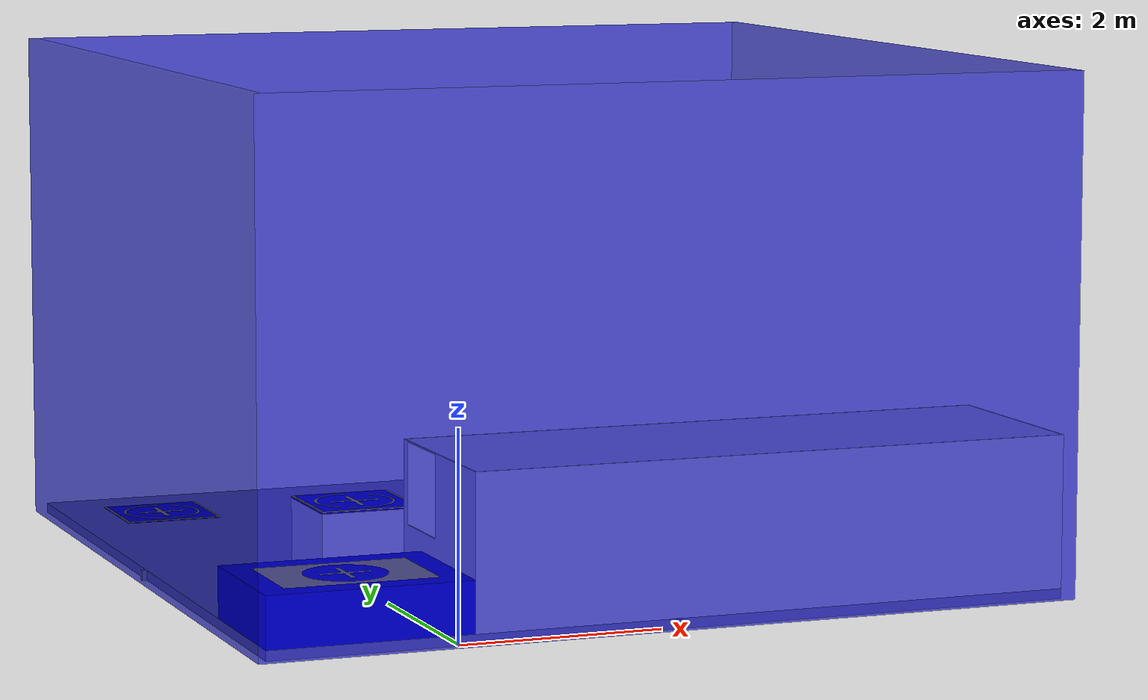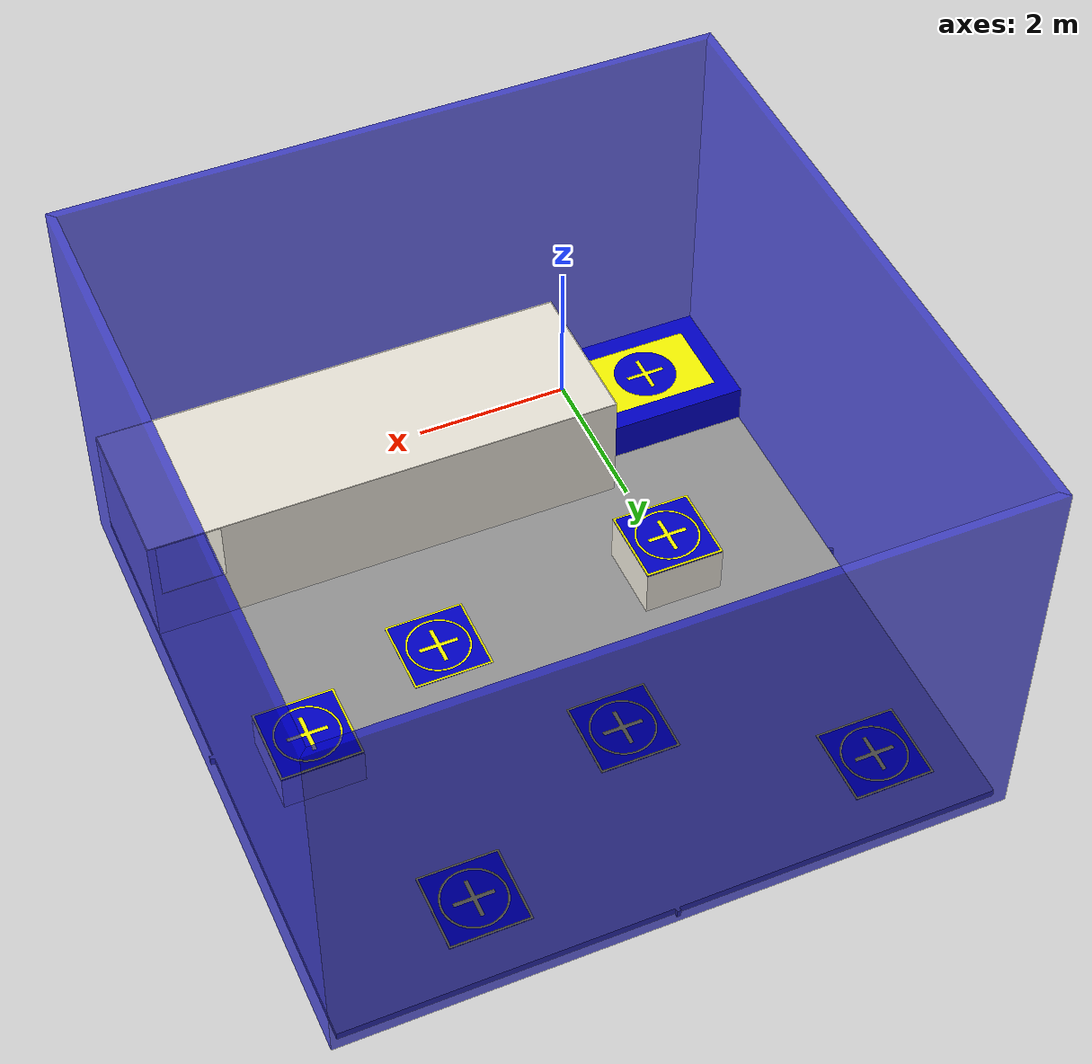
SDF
<sdf version='1.11'>
  <model name='arena_2025_desenho_5'>
    <link name='base_link'>
      <inertial>
        <pose>2.007137063814882 3.7095277436307299 1.6816011139771989 0 0 0</pose>
        <mass>205335.98191315381</mass>
        <inertia>
          <ixx>2398590.1758396029</ixx>
          <ixy>-105314.3252685613</ixy>
          <ixz>-41107.762993912911</ixz>
          <iyy>2421938.134123703</iyy>
          <iyz>-59231.310826300411</iyz>
          <izz>3714783.946488</izz>
        </inertia>
      </inertial>
      <collision name='base_link_collision_collision'>
        <pose>0 0 0 0 0 0</pose>
        <geometry>
          <mesh>
            <scale>0.001 0.001 0.001</scale>
            <uri>meshes/base_link.stl</uri>
          </mesh>
        </geometry>
      </collision>
      <collision name='base_link_fixed_joint_lump__parede1_collision_collision_1'>
        <pose>-1.8502115568123969 -0.041793670335398492 -6.9388939039072284e-18 0 0 0</pose>
        <geometry>
          <mesh>
            <scale>0.001 0.001 0.001</scale>
            <uri>meshes/parede1.stl</uri>
          </mesh>
        </geometry>
      </collision>
      <collision name='base_link_fixed_joint_lump__parede4_collision_collision_2'>
        <pose>-1.850211556812396 -0.041793670335398048 -9.4368957093138306e-16 0 0 0</pose>
        <geometry>
          <mesh>
            <scale>0.001 0.001 0.001</scale>
            <uri>meshes/parede4.stl</uri>
          </mesh>
        </geometry>
      </collision>
      <collision name='base_link_fixed_joint_lump__parede3_collision_collision_3'>
        <pose>-1.8502115568123969 -0.041793670335399817 8.3266726846886741e-16 1.224646799147353e-16 -7.4987989133092894e-33 1.224646799147353e-16</pose>
        <geometry>
          <mesh>
            <scale>0.001 0.001 0.001</scale>
            <uri>meshes/parede3.stl</uri>
          </mesh>
        </geometry>
      </collision>
      <collision name='base_link_fixed_joint_lump__parede2_collision_collision_4'>
        <pose>-1.850211556812396 -0.041793670335398478 -6.9388939039072284e-18 0 0 0</pose>
        <geometry>
          <mesh>
            <scale>0.001 0.001 0.001</scale>
            <uri>meshes/parede2.stl</uri>
          </mesh>
        </geometry>
      </collision>
      <collision name='base_link_fixed_joint_lump__Takeoff_Baseazul_collision_collision_5'>
        <pose>-1.8502115568123969 -0.041793670335398492 5.6898930012039273e-16 0 0 0</pose>
        <geometry>
          <mesh>
            <scale>0.001 0.001 0.001</scale>
            <uri>meshes/Takeoff_Baseazul.stl</uri>
          </mesh>
        </geometry>
      </collision>
      <collision name='base_link_fixed_joint_lump__Takeoff_Baseamarelo_collision_collision_6'>
        <pose>-1.8502115568123969 -0.041793670335398492 5.134781488891349e-16 0 0 0</pose>
        <geometry>
          <mesh>
            <scale>0.001 0.001 0.001</scale>
            <uri>meshes/Takeoff_Baseamarelo.stl</uri>
          </mesh>
        </geometry>
      </collision>
      <collision name='base_link_fixed_joint_lump__casa_paredes_collision_collision_7'>
        <pose>-1.850211556812398 -0.041793670335398492 0 0 0 0</pose>
        <geometry>
          <mesh>
            <scale>0.001 0.001 0.001</scale>
            <uri>meshes/casa_paredes.stl</uri>
          </mesh>
        </geometry>
      </collision>
      <collision name='base_link_fixed_joint_lump__casa_teto_collision_collision_8'>
        <pose>-1.8502115568123949 -0.041793670335397833 2.775557561562891e-17 0 0 0</pose>
        <geometry>
          <mesh>
            <scale>0.001 0.001 0.001</scale>
            <uri>meshes/casa_teto.stl</uri>
          </mesh>
        </geometry>
      </collision>
      <collision name='base_link_fixed_joint_lump__base_movelzinza1_collision_collision_9'>
        <pose>-0.85021148681640069 0.45820632934572147 -2.0010000000149009 0 0 0</pose>
        <geometry>
          <mesh>
            <scale>0.001 0.001 0.001</scale>
            <uri>meshes/base_movelzinza1.stl</uri>
          </mesh>
        </geometry>
      </collision>
      <collision name='base_link_fixed_joint_lump__Landing_Basesazul1_collision_collision_10'>
        <pose>-0.8502114868163978 0.4582063293457268 -0.1000000000000003 0 0 0</pose>
        <geometry>
          <mesh>
            <scale>0.001 0.001 0.001</scale>
            <uri>meshes/Landing_Basesazul1.stl</uri>
          </mesh>
        </geometry>
      </collision>
      <collision name='base_link_fixed_joint_lump__Landing_Basesamarelo_1_collision_collision_11'>
        <pose>-0.8502114868163938 0.45820632934573841 -0.1000000000000003 0 0 0</pose>
        <geometry>
          <mesh>
            <scale>0.001 0.001 0.001</scale>
            <uri>meshes/Landing_Basesamarelo_1.stl</uri>
          </mesh>
        </geometry>
      </collision>
      <collision name='base_link_fixed_joint_lump__Landing_Basesazul3_collision_collision_12'>
        <pose>1.6497885131835941 -2.5417936706542972 -8.0000000000149001 0 0 0</pose>
        <geometry>
          <mesh>
            <scale>0.001 0.001 0.001</scale>
            <uri>meshes/Landing_Basesazul3.stl</uri>
          </mesh>
        </geometry>
      </collision>
      <collision name='base_link_fixed_joint_lump__Landing_Basesamarelo_3_collision_collision_13'>
        <pose>1.6497885131835941 -2.5417936706542972 -1.4900372602433271e-11 0 0 0</pose>
        <geometry>
          <mesh>
            <scale>0.001 0.001 0.001</scale>
            <uri>meshes/Landing_Basesamarelo_3.stl</uri>
          </mesh>
        </geometry>
      </collision>
      <collision name='base_link_fixed_joint_lump__Landing_Basesazul4_collision_collision_14'>
        <pose>-2.3502114868164061 0.95820632934570327 -6.500000000014901 0 0 0</pose>
        <geometry>
          <mesh>
            <scale>0.001 0.001 0.001</scale>
            <uri>meshes/Landing_Basesazul4.stl</uri>
          </mesh>
        </geometry>
      </collision>
      <collision name='base_link_fixed_joint_lump__Landing_Basesamarelo_4_collision_collision_15'>
        <pose>-2.3502114868164061 0.95820632934570327 -1.4900372602433271e-11 0 0 0</pose>
        <geometry>
          <mesh>
            <scale>0.001 0.001 0.001</scale>
            <uri>meshes/Landing_Basesamarelo_4.stl</uri>
          </mesh>
        </geometry>
      </collision>
      <collision name='base_link_fixed_joint_lump__Landing_Basesazul5_collision_collision_16'>
        <pose>-2.850211486816387 3.9582063293457121 -5.500000000014901 0 0 0</pose>
        <geometry>
          <mesh>
            <scale>0.001 0.001 0.001</scale>
            <uri>meshes/Landing_Basesazul5.stl</uri>
          </mesh>
        </geometry>
      </collision>
      <collision name='base_link_fixed_joint_lump__Landing_Basesamarelo_5_collision_collision_17'>
        <pose>-2.850211486816407 3.9582063293457042 -4.5000000000149001 0 0 0</pose>
        <geometry>
          <mesh>
            <scale>0.001 0.001 0.001</scale>
            <uri>meshes/Landing_Basesamarelo_5.stl</uri>
          </mesh>
        </geometry>
      </collision>
      <collision name='base_link_fixed_joint_lump__Landing_Basesazul6_collision_collision_18'>
        <pose>-5.8502114868164066 5.8702063293457032 -4.000000000014901 0 0 0</pose>
        <geometry>
          <mesh>
            <scale>0.001 0.001 0.001</scale>
            <uri>meshes/Landing_Basesazul6.stl</uri>
          </mesh>
        </geometry>
      </collision>
      <collision name='base_link_fixed_joint_lump__Landing_Basesamarelo_6_collision_collision_19'>
        <pose>-5.8502114868164066 5.8702063293457032 -1.5010000000149011 0 0 0</pose>
        <geometry>
          <mesh>
            <scale>0.001 0.001 0.001</scale>
            <uri>meshes/Landing_Basesamarelo_6.stl</uri>
          </mesh>
        </geometry>
      </collision>
      <collision name='base_link_fixed_joint_lump__base_movelzinza2_collision_collision_20'>
        <pose>0.64978851318359432 -2.0417936706542972 -4.9910000000149006 0 0 0</pose>
        <geometry>
          <mesh>
            <scale>0.001 0.001 0.001</scale>
            <uri>meshes/base_movelzinza2.stl</uri>
          </mesh>
        </geometry>
      </collision>
      <collision name='base_link_fixed_joint_lump__Landing_Basesazul2_collision_collision_21'>
        <pose>0.64978851318360142 -2.0417936706542861 -0.49100001610815541 0 0 0</pose>
        <geometry>
          <mesh>
            <scale>0.001 0.001 0.001</scale>
            <uri>meshes/Landing_Basesazul2.stl</uri>
          </mesh>
        </geometry>
      </collision>
      <collision name='base_link_fixed_joint_lump__Landing_Basesamarelo_2_collision_collision_22'>
        <pose>0.64978851318360498 -2.0417936706542812 -0.49100001610815508 0 0 0</pose>
        <geometry>
          <mesh>
            <scale>0.001 0.001 0.001</scale>
            <uri>meshes/Landing_Basesamarelo_2.stl</uri>
          </mesh>
        </geometry>
      </collision>

      #visuals cores

      <visual name='base_link_visual_visual'>
        <pose>0 0 0 0 0 0</pose>
        <geometry>
          <mesh>
            <scale>0.001 0.001 0.001</scale>
            <uri>meshes/base_link.stl</uri>
          </mesh>
        </geometry>
        <material>
          <ambient>0.4 0.4 0.4 1</ambient>
          <diffuse>0.6 0.6 0.6 1</diffuse>
          <specular>0.8 0.8 0.8 1</specular>
        </material>
      </visual>
      <visual name='base_link_fixed_joint_lump__parede1_visual_visual_1'>
        <pose>-1.8502115568123969 -0.041793670335398492 -6.9388939039072284e-18 0 0 0</pose>
        <geometry>
          <mesh>
            <scale>0.001 0.001 0.001</scale>
            <uri>meshes/parede1.stl</uri>
          </mesh>
        </geometry>
        <material>
          <ambient>0.0 0.0 0.5 0.65</ambient>
          <diffuse>0.0 0.0 0.8 0.65</diffuse>
          <specular>0.3 0.3 0.8 0.65</specular>
          <transparency>0.65</transparency>
        </material>
      </visual>
      <visual name='base_link_fixed_joint_lump__parede4_visual_visual_2'>
        <pose>-1.850211556812396 -0.041793670335398048 -9.4368957093138306e-16 0 0 0</pose>
        <geometry>
          <mesh>
            <scale>0.001 0.001 0.001</scale>
            <uri>meshes/parede4.stl</uri>
          </mesh>
        </geometry>
        <material>
          <ambient>0.0 0.0 0.5 0.65</ambient>
          <diffuse>0.0 0.0 0.8 0.65</diffuse>
          <specular>0.3 0.3 0.8 0.65</specular>
          <transparency>0.65</transparency>
        </material>
      </visual>
      <visual name='base_link_fixed_joint_lump__parede3_visual_visual_3'>
        <pose>-1.8502115568123969 -0.041793670335399817 8.3266726846886741e-16 1.224646799147353e-16 -7.4987989133092894e-33 1.224646799147353e-16</pose>
        <geometry>
          <mesh>
            <scale>0.001 0.001 0.001</scale>
            <uri>meshes/parede3.stl</uri>
          </mesh>
        </geometry>
        <material>
          <ambient>0.0 0.0 0.5 0.65</ambient>
          <diffuse>0.0 0.0 0.8 0.65</diffuse>
          <specular>0.3 0.3 0.8 0.65</specular>
          <transparency>0.65</transparency>
        </material>
      </visual>
      <visual name='base_link_fixed_joint_lump__parede2_visual_visual_4'>
        <pose>-1.850211556812396 -0.041793670335398478 -6.9388939039072284e-18 0 0 0</pose>
        <geometry>
          <mesh>
            <scale>0.001 0.001 0.001</scale>
            <uri>meshes/parede2.stl</uri>
          </mesh>
        </geometry>
        <material>
          <ambient>0.0 0.0 0.5 0.65</ambient>
          <diffuse>0.0 0.0 0.8 0.65</diffuse>
          <specular>0.3 0.3 0.8 0.65</specular>
          <transparency>0.65</transparency>
        </material>
      </visual>
      <visual name='base_link_fixed_joint_lump__Takeoff_Baseazul_visual_visual_5'>
        <pose>-1.8502115568123969 -0.041793670335398492 5.6898930012039273e-16 0 0 0</pose>
        <geometry>
          <mesh>
            <scale>0.001 0.001 0.001</scale>
            <uri>meshes/Takeoff_Baseazul.stl</uri>
          </mesh>
        </geometry>
        <material>
          <ambient>0.0 0.0 0.5 1</ambient>
          <diffuse>0.0 0.0 0.8 1</diffuse>
          <specular>0.3 0.3 0.8 1</specular>
        </material>
      </visual>
      <visual name='base_link_fixed_joint_lump__Takeoff_Baseamarelo_visual_visual_6'>
        <pose>-1.8502115568123969 -0.041793670335398492 5.134781488891349e-16 0 0 0</pose>
        <geometry>
          <mesh>
            <scale>0.001 0.001 0.001</scale>
            <uri>meshes/Takeoff_Baseamarelo.stl</uri>
          </mesh>
        </geometry>
        <material>
          <ambient>0.8 0.8 0.0 1</ambient>
          <diffuse>1.0 1.0 0.0 1</diffuse>
           <specular>0.8 0.8 0.3 1</specular>
        </material>
      </visual>
      <visual name='base_link_fixed_joint_lump__casa_paredes_visual_visual_7'>
        <pose>-1.850211556812398 -0.041793670335398492 0 0 0 0</pose>
        <geometry>
          <mesh>
            <scale>0.001 0.001 0.001</scale>
            <uri>meshes/casa_paredes.stl</uri>
          </mesh>
        </geometry>
        <material>
          <ambient>0.92 0.90 0.85 1</ambient>
          <diffuse>0.94 0.92 0.87 1</diffuse>
          <specular>0.14 0.14 0.13 1</specular>
        </material>
      </visual>
      <visual name='base_link_fixed_joint_lump__casa_teto_visual_visual_8'>
        <pose>-1.8502115568123949 -0.041793670335397833 2.775557561562891e-17 0 0 0</pose>
        <geometry>
          <mesh>
            <scale>0.001 0.001 0.001</scale>
            <uri>meshes/casa_teto.stl</uri>
          </mesh>
        </geometry>
        <material>
          <ambient>0.92 0.90 0.85 1</ambient>
          <diffuse>0.94 0.92 0.87 1</diffuse>
          <specular>0.14 0.14 0.13 1</specular>
        </material>
      </visual>
      <visual name='base_link_fixed_joint_lump__base_movelzinza1_visual_visual_9'>
        <pose>-0.85021148681640069 0.45820632934572147 -2.0010000000149009 0 0 0</pose>
        <geometry>
          <mesh>
            <scale>0.001 0.001 0.001</scale>
            <uri>meshes/base_movelzinza1.stl</uri>
          </mesh>
        </geometry>
        <material>
          <ambient>0.92 0.90 0.85 1</ambient>
          <diffuse>0.94 0.92 0.87 1</diffuse>
          <specular>0.14 0.14 0.13 1</specular>
        </material>
      </visual>
      <visual name='base_link_fixed_joint_lump__Landing_Basesazul1_visual_visual_10'>
        <pose>-0.8502114868163978 0.4582063293457268 -0.1000000000000003 0 0 0</pose>
        <geometry>
          <mesh>
            <scale>0.001 0.001 0.001</scale>
            <uri>meshes/Landing_Basesazul1.stl</uri>
          </mesh>
        </geometry>
        <material>
          <ambient>0.0 0.0 0.5 1</ambient>
          <diffuse>0.0 0.0 0.8 1</diffuse>
          <specular>0.3 0.3 0.8 1</specular>
        </material>
      </visual>
      <visual name='base_link_fixed_joint_lump__Landing_Basesamarelo_1_visual_visual_11'>
        <pose>-0.8502114868163938 0.45820632934573841 -0.1000000000000003 0 0 0</pose>
        <geometry>
          <mesh>
            <scale>0.001 0.001 0.001</scale>
            <uri>meshes/Landing_Basesamarelo_1.stl</uri>
          </mesh>
        </geometry>
        <material>
          <ambient>0.8 0.8 0.0 1</ambient>
          <diffuse>1.0 1.0 0.0 1</diffuse>
           <specular>0.8 0.8 0.3 1</specular>
        </material>
      </visual>
      <visual name='base_link_fixed_joint_lump__Landing_Basesazul3_visual_visual_12'>
        <pose>1.6497885131835941 -2.5417936706542972 -8.0000000000149001 0 0 0</pose>
        <geometry>
          <mesh>
            <scale>0.001 0.001 0.001</scale>
            <uri>meshes/Landing_Basesazul3.stl</uri>
          </mesh>
        </geometry>
        <material>
          <ambient>0.0 0.0 0.5 1</ambient>
          <diffuse>0.0 0.0 0.8 1</diffuse>
          <specular>0.3 0.3 0.8 1</specular>
        </material>
      </visual>
      <visual name='base_link_fixed_joint_lump__Landing_Basesamarelo_3_visual_visual_13'>
        <pose>1.6497885131835941 -2.5417936706542972 -1.4900372602433271e-11 0 0 0</pose>
        <geometry>
          <mesh>
            <scale>0.001 0.001 0.001</scale>
            <uri>meshes/Landing_Basesamarelo_3.stl</uri>
          </mesh>
        </geometry>
        <material>
          <ambient>0.8 0.8 0.0 1</ambient>
          <diffuse>1.0 1.0 0.0 1</diffuse>
           <specular>0.8 0.8 0.3 1</specular>
        </material>
      </visual>
      <visual name='base_link_fixed_joint_lump__Landing_Basesazul4_visual_visual_14'>
        <pose>-2.3502114868164061 0.95820632934570327 -6.500000000014901 0 0 0</pose>
        <geometry>
          <mesh>
            <scale>0.001 0.001 0.001</scale>
            <uri>meshes/Landing_Basesazul4.stl</uri>
          </mesh>
        </geometry>
        <material>
          <ambient>0.0 0.0 0.5 1</ambient>
          <diffuse>0.0 0.0 0.8 1</diffuse>
          <specular>0.3 0.3 0.8 1</specular>
        </material>
      </visual>
      <visual name='base_link_fixed_joint_lump__Landing_Basesamarelo_4_visual_visual_15'>
        <pose>-2.3502114868164061 0.95820632934570327 -1.4900372602433271e-11 0 0 0</pose>
        <geometry>
          <mesh>
            <scale>0.001 0.001 0.001</scale>
            <uri>meshes/Landing_Basesamarelo_4.stl</uri>
          </mesh>
        </geometry>
        <material>
          <ambient>0.8 0.8 0.0 1</ambient>
          <diffuse>1.0 1.0 0.0 1</diffuse>
           <specular>0.8 0.8 0.3 1</specular>
        </material>
      </visual>
      <visual name='base_link_fixed_joint_lump__Landing_Basesazul5_visual_visual_16'>
        <pose>-2.850211486816387 3.9582063293457121 -5.500000000014901 0 0 0</pose>
        <geometry>
          <mesh>
            <scale>0.001 0.001 0.001</scale>
            <uri>meshes/Landing_Basesazul5.stl</uri>
          </mesh>
        </geometry>
        <material>
          <ambient>0.0 0.0 0.5 1</ambient>
          <diffuse>0.0 0.0 0.8 1</diffuse>
          <specular>0.3 0.3 0.8 1</specular>
        </material>
      </visual>
      <visual name='base_link_fixed_joint_lump__Landing_Basesamarelo_5_visual_visual_17'>
        <pose>-2.850211486816407 3.9582063293457042 -4.5000000000149001 0 0 0</pose>
        <geometry>
          <mesh>
            <scale>0.001 0.001 0.001</scale>
            <uri>meshes/Landing_Basesamarelo_5.stl</uri>
          </mesh>
        </geometry>
        <material>
          <ambient>0.8 0.8 0.0 1</ambient>
          <diffuse>1.0 1.0 0.0 1</diffuse>
           <specular>0.8 0.8 0.3 1</specular>
        </material>
      </visual>
      <visual name='base_link_fixed_joint_lump__Landing_Basesazul6_visual_visual_18'>
        <pose>-5.8502114868164066 5.8702063293457032 -4.000000000014901 0 0 0</pose>
        <geometry>
          <mesh>
            <scale>0.001 0.001 0.001</scale>
            <uri>meshes/Landing_Basesazul6.stl</uri>
          </mesh>
        </geometry>
        <material>
          <ambient>0.0 0.0 0.5 1</ambient>
          <diffuse>0.0 0.0 0.8 1</diffuse>
          <specular>0.3 0.3 0.8 1</specular>
        </material>
      </visual>
      <visual name='base_link_fixed_joint_lump__Landing_Basesamarelo_6_visual_visual_19'>
        <pose>-5.8502114868164066 5.8702063293457032 -1.5010000000149011 0 0 0</pose>
        <geometry>
          <mesh>
            <scale>0.001 0.001 0.001</scale>
            <uri>meshes/Landing_Basesamarelo_6.stl</uri>
          </mesh>
        </geometry>
        <material>
          <ambient>0.8 0.8 0.0 1</ambient>
          <diffuse>1.0 1.0 0.0 1</diffuse>
           <specular>0.8 0.8 0.3 1</specular>
        </material>
      </visual>
      <visual name='base_link_fixed_joint_lump__base_movelzinza2_visual_visual_20'>
        <pose>0.64978851318359432 -2.0417936706542972 -4.9910000000149006 0 0 0</pose>
        <geometry>
          <mesh>
            <scale>0.001 0.001 0.001</scale>
            <uri>meshes/base_movelzinza2.stl</uri>
          </mesh>
        </geometry>
        <material>
          <ambient>0.92 0.90 0.85 1</ambient>
          <diffuse>0.94 0.92 0.87 1</diffuse>
          <specular>0.14 0.14 0.13 1</specular>
        </material>
      </visual>
      <visual name='base_link_fixed_joint_lump__Landing_Basesazul2_visual_visual_21'>
        <pose>0.64978851318360142 -2.0417936706542861 -0.49100001610815541 0 0 0</pose>
        <geometry>
          <mesh>
            <scale>0.001 0.001 0.001</scale>
            <uri>meshes/Landing_Basesazul2.stl</uri>
          </mesh>
        </geometry>
        <material>
          <ambient>0.0 0.0 0.5 1</ambient>
          <diffuse>0.0 0.0 0.8 1</diffuse>
          <specular>0.3 0.3 0.8 1</specular>
        </material>
      </visual>
      <visual name='base_link_fixed_joint_lump__Landing_Basesamarelo_2_visual_visual_22'>
        <pose>0.64978851318360498 -2.0417936706542812 -0.49100001610815508 0 0 0</pose>
        <geometry>
          <mesh>
            <scale>0.001 0.001 0.001</scale>
            <uri>meshes/Landing_Basesamarelo_2.stl</uri>
          </mesh>
        </geometry>
        <material>
          <ambient>0.8 0.8 0.0 1</ambient>
          <diffuse>1.0 1.0 0.0 1</diffuse>
           <specular>0.8 0.8 0.3 1</specular>
        </material>
      </visual>
    </link>
    <frame name='base_link_Rígido-31' attached_to='base_link'>
      <pose>-1.9002115568123961 3.9582063296646028 0.049999999999999767 0 -1.5707963267948966 0</pose>
    </frame>
    <frame name='parede1' attached_to='base_link_Rígido-31'>
      <pose>0 0 0 0 0 0</pose>
    </frame>
    <frame name='base_link_Rígido-32' attached_to='base_link'>
      <pose>2.149788443187604 8.0082063296646044 0.049999999999999767 -1.5707963267948959 0 0</pose>
    </frame>
    <frame name='parede4' attached_to='base_link_Rígido-32'>
      <pose>0 0 0 0 0 0</pose>
    </frame>
    <frame name='base_link_Rígido-33' attached_to='base_link'>
      <pose>6.1997884431876038 3.9582063196646029 0.049999999999999767 -3.1415926535897931 -1.5707963267948966 0</pose>
    </frame>
    <frame name='parede3' attached_to='base_link_Rígido-33'>
      <pose>0 0 0 0 0 0</pose>
    </frame>
    <frame name='base_link_Rígido-34' attached_to='base_link'>
      <pose>2.149788443187604 -0.091793670335396774 0.049999999999999767 1.5707963267948959 0 0</pose>
    </frame>
    <frame name='parede2' attached_to='base_link_Rígido-34'>
      <pose>0 0 0 0 0 0</pose>
    </frame>
    <frame name='Takeoff_Baseazul_Rígido-44' attached_to='Takeoff_Baseazul'>
      <pose>0 0 0.49099999999999988 0 0 0</pose>
    </frame>
    <frame name='Takeoff_Baseamarelo' attached_to='Takeoff_Baseazul_Rígido-44'>
      <pose>0 0 0 0 0 0</pose>
    </frame>
    <frame name='base_link_Rígido-35' attached_to='base_link'>
      <pose>-0.8502115568123958 0.70820632966460328 0.098999999999999769 0 0 0</pose>
    </frame>
    <frame name='Takeoff_Baseazul' attached_to='base_link_Rígido-35'>
      <pose>0 0 0 0 0 0</pose>
    </frame>
    <frame name='casa_paredes_Rígido-42' attached_to='casa_paredes'>
      <pose>0 0 1.522 0 0 0</pose>
    </frame>
    <frame name='casa_teto' attached_to='casa_paredes_Rígido-42'>
      <pose>0 0 0 0 0 0</pose>
    </frame>
    <frame name='base_link_Rígido-41' attached_to='base_link'>
      <pose>3.1377884731876038 0.95820178966460323 0.07299999999999976 0 0 0</pose>
    </frame>
    <frame name='casa_paredes' attached_to='base_link_Rígido-41'>
      <pose>0 0 0 0 0 0</pose>
    </frame>
    <frame name='Landing_Basesazul1_Rígido-57' attached_to='Landing_Basesazul1'>
      <pose>0 0 0.01099999999999994 0 0 0</pose>
    </frame>
    <frame name='Landing_Basesamarelo_1' attached_to='Landing_Basesazul1_Rígido-57'>
      <pose>0 0 0 0 0 0</pose>
    </frame>
    <frame name='base_movelzinza1_Rígido-56' attached_to='base_movelzinza1'>
      <pose>0 0 0.63 0 0 0</pose>
    </frame>
    <frame name='Landing_Basesazul1' attached_to='base_movelzinza1_Rígido-56'>
      <pose>0 0 0 0 0 0</pose>
    </frame>
    <frame name='base_link_Rígido-63' attached_to='base_link'>
      <pose>0.14978851318760431 3.4582063296646028 0.098999999999999769 0 0 0</pose>
    </frame>
    <frame name='base_movelzinza1' attached_to='base_link_Rígido-63'>
      <pose>0 0 0 0 0 0</pose>
    </frame>
    <frame name='Landing_Basesazul3_Rígido-46' attached_to='Landing_Basesazul3'>
      <pose>0 0 0.006000000000000014 0 0 0</pose>
    </frame>
    <frame name='Landing_Basesamarelo_3' attached_to='Landing_Basesazul3_Rígido-46'>
      <pose>0 0 0 0 0 0</pose>
    </frame>
    <frame name='base_link_Rígido-64' attached_to='base_link'>
      <pose>3.149788513187604 3.4582063296646028 0.098999999999999769 0 0 0</pose>
    </frame>
    <frame name='Landing_Basesazul3' attached_to='base_link_Rígido-64'>
      <pose>0 0 0 0 0 0</pose>
    </frame>
    <frame name='Landing_Basesazul4_Rígido-48' attached_to='Landing_Basesazul4'>
      <pose>0 0 0.0050000000000000001 0 0 0</pose>
    </frame>
    <frame name='Landing_Basesamarelo_4' attached_to='Landing_Basesazul4_Rígido-48'>
      <pose>0 0 0 0 0 0</pose>
    </frame>
    <frame name='base_link_Rígido-65' attached_to='base_link'>
      <pose>1.649788513187604 5.4582063296646037 0.098999999999999769 0 0 0</pose>
    </frame>
    <frame name='Landing_Basesazul4' attached_to='base_link_Rígido-65'>
      <pose>0 0 0 0 0 0</pose>
    </frame>
    <frame name='Landing_Basesazul5_Rígido-49' attached_to='Landing_Basesazul5'>
      <pose>0 0 0.0050000000000000001 0 0 0</pose>
    </frame>
    <frame name='Landing_Basesamarelo_5' attached_to='Landing_Basesazul5_Rígido-49'>
      <pose>0 0 0 0 0 0</pose>
    </frame>
    <frame name='base_link_Rígido-66' attached_to='base_link'>
      <pose>4.1497885131876044 6.9582063296646037 0.098999999999999769 0 0 0</pose>
    </frame>
    <frame name='Landing_Basesazul5' attached_to='base_link_Rígido-66'>
      <pose>0 0 0 0 0 0</pose>
    </frame>
    <frame name='Landing_Basesazul6_Rígido-50' attached_to='Landing_Basesazul6'>
      <pose>0 0 0.0050000000000000001 0 0 0</pose>
    </frame>
    <frame name='Landing_Basesamarelo_6' attached_to='Landing_Basesazul6_Rígido-50'>
      <pose>0 0 0 0 0 0</pose>
    </frame>
    <frame name='base_link_Rígido-67' attached_to='base_link'>
      <pose>-0.85021148681239578 6.9582063296646037 0.098999999999999769 0 0 0</pose>
    </frame>
    <frame name='Landing_Basesazul6' attached_to='base_link_Rígido-67'>
      <pose>0 0 0 0 0 0</pose>
    </frame>
    <frame name='Landing_Basesazul2_Rígido-61' attached_to='Landing_Basesazul2'>
      <pose>0 0 0.0099999800000000506 0 0 0</pose>
    </frame>
    <frame name='Landing_Basesamarelo_2' attached_to='Landing_Basesazul2_Rígido-61'>
      <pose>0 0 0 0 0 0</pose>
    </frame>
    <frame name='base_movelzinza2_Rígido-60' attached_to='base_movelzinza2'>
      <pose>0 0 0.48999999999999999 0 0 0</pose>
    </frame>
    <frame name='Landing_Basesazul2' attached_to='base_movelzinza2_Rígido-60'>
      <pose>0 0 0 0 0 0</pose>
    </frame>
    <frame name='base_link_Rígido-68' attached_to='base_link'>
      <pose>5.1497885131876044 4.4582063296646037 0.098999999999999769 0 0 0</pose>
    </frame>
    <frame name='base_movelzinza2' attached_to='base_link_Rígido-68'>
      <pose>0 0 0 0 0 0</pose>
    </frame>
  </model>
</sdf>
